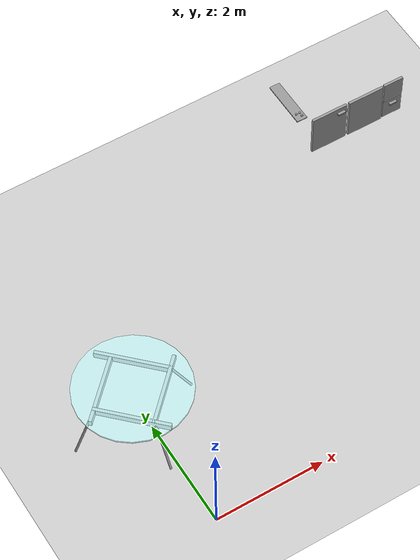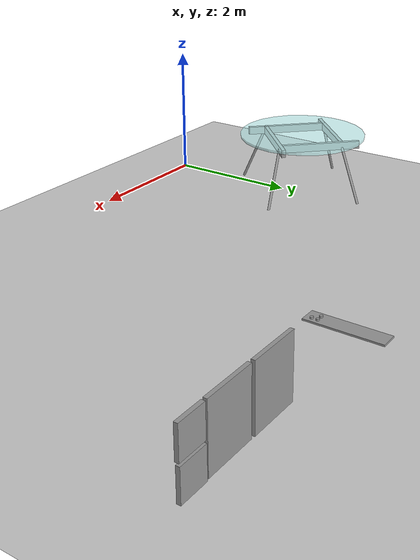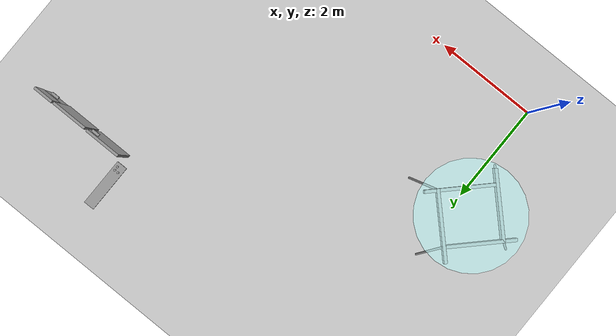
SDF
<sdf version="1.7">
 <world name="default">
  <model name="ground_plane">
   <static>1</static>
   <link name="link">
    <collision name="collision">
     <geometry><plane><normal>0 0 1</normal><size>100 100</size></plane></geometry>
     <surface>
      <contact><collide_bitmask>65535</collide_bitmask></contact>
      <friction><ode><mu>100</mu><mu2>50</mu2></ode></friction>
     </surface>
    </collision>
    <visual name="visual">
     <cast_shadows>0</cast_shadows>
     <geometry><plane><normal>0 0 1</normal><size>100 100</size></plane></geometry>
     <material>
      <script><uri>file://media/materials/scripts/gazebo.material</uri><name>Gazebo/Grey</name></script>
     </material>
    </visual>
   </link>
  </model>
  <model name="my_kitchen">
   <link name="link_0_0_clone_clone_clone_clone">
    <inertial>
     <mass>1</mass>
     <inertia><ixx>0.145833</ixx><ixy>0</ixy><ixz>0</ixz><iyy>0.145833</iyy><iyz>0</iyz><izz>0.125</izz></inertia>
    </inertial>
    <pose>1.86316 -0.307981 1.03286 0 -0 0</pose>
    <visual name="visual">
     <geometry><cylinder><radius>0.02</radius><length>0.03</length></cylinder></geometry>
     <material>
      <lighting>1</lighting>
      <script><uri>file://media/materials/scripts/gazebo.material</uri><name>Gazebo/Grey</name></script>
      <shader type="pixel"><normal_map>__default__</normal_map></shader>
      <ambient>0.6 0.6 0.6 1</ambient>
      <diffuse>0.6 0.6 0.6 1</diffuse>
      <specular>0.01 0.01 0.01 1</specular>
      <emissive>0 0 0 1</emissive>
     </material>
    </visual>
    <collision name="collision">
     <geometry><cylinder><radius>0.02</radius><length>0.03</length></cylinder></geometry>
     <surface>
      <friction>
       <ode><mu>1</mu><mu2>1</mu2><fdir1>0 0 0</fdir1><slip1>0</slip1><slip2>0</slip2></ode>
       <torsional>
        <coefficient>1</coefficient>
        <patch_radius>0</patch_radius>
        <surface_radius>0</surface_radius>
        <use_patch_radius>1</use_patch_radius>
        <ode><slip>0</slip></ode>
       </torsional>
      </friction>
      <bounce><restitution_coefficient>0</restitution_coefficient><threshold>1e+06</threshold></bounce>
      <contact>
       <collide_without_contact>0</collide_without_contact>
       <collide_without_contact_bitmask>1</collide_without_contact_bitmask>
       <collide_bitmask>1</collide_bitmask>
       <ode>
        <soft_cfm>0</soft_cfm>
        <soft_erp>0.2</soft_erp>
        <kp>1e+13</kp>
        <kd>1</kd>
        <max_vel>0.01</max_vel>
        <min_depth>0</min_depth>
       </ode>
       <bullet>
        <split_impulse>1</split_impulse>
        <split_impulse_penetration_threshold>-0.01</split_impulse_penetration_threshold>
        <soft_cfm>0</soft_cfm>
        <soft_erp>0.2</soft_erp>
        <kp>1e+13</kp>
        <kd>1</kd>
       </bullet>
      </contact>
     </surface>
    </collision>
   </link>
   <link name="link_0_0_clone_clone_clone_clone_clone">
    <inertial>
     <mass>1</mass>
     <inertia><ixx>0.145833</ixx><ixy>0</ixy><ixz>0</ixz><iyy>0.145833</iyy><iyz>0</iyz><izz>0.125</izz></inertia>
    </inertial>
    <pose>1.93281 -0.308649 1.03286 0 -0 0</pose>
    <visual name="visual">
     <geometry><cylinder><radius>0.02</radius><length>0.03</length></cylinder></geometry>
     <material>
      <lighting>1</lighting>
      <script><uri>file://media/materials/scripts/gazebo.material</uri><name>Gazebo/Grey</name></script>
      <shader type="pixel"><normal_map>__default__</normal_map></shader>
      <ambient>0.6 0.6 0.6 1</ambient>
      <diffuse>0.6 0.6 0.6 1</diffuse>
      <specular>0.01 0.01 0.01 1</specular>
      <emissive>0 0 0 1</emissive>
     </material>
    </visual>
    <collision name="collision">
     <geometry><cylinder><radius>0.02</radius><length>0.03</length></cylinder></geometry>
     <surface>
      <friction>
       <ode><mu>1</mu><mu2>1</mu2><fdir1>0 0 0</fdir1><slip1>0</slip1><slip2>0</slip2></ode>
       <torsional>
        <coefficient>1</coefficient>
        <patch_radius>0</patch_radius>
        <surface_radius>0</surface_radius>
        <use_patch_radius>1</use_patch_radius>
        <ode><slip>0</slip></ode>
       </torsional>
      </friction>
      <bounce><restitution_coefficient>0</restitution_coefficient><threshold>1e+06</threshold></bounce>
      <contact>
       <collide_without_contact>0</collide_without_contact>
       <collide_without_contact_bitmask>1</collide_without_contact_bitmask>
       <collide_bitmask>1</collide_bitmask>
       <ode>
        <soft_cfm>0</soft_cfm>
        <soft_erp>0.2</soft_erp>
        <kp>1e+13</kp>
        <kd>1</kd>
        <max_vel>0.01</max_vel>
        <min_depth>0</min_depth>
       </ode>
       <bullet>
        <split_impulse>1</split_impulse>
        <split_impulse_penetration_threshold>-0.01</split_impulse_penetration_threshold>
        <soft_cfm>0</soft_cfm>
        <soft_erp>0.2</soft_erp>
        <kp>1e+13</kp>
        <kd>1</kd>
       </bullet>
      </contact>
     </surface>
    </collision>
   </link>
   <link name="link_0_0_clone_clone_clone_clone_clone_clone_clone">
    <inertial>
     <mass>1</mass>
     <inertia><ixx>0.145833</ixx><ixy>0</ixy><ixz>0</ixz><iyy>0.145833</iyy><iyz>0</iyz><izz>0.125</izz></inertia>
    </inertial>
    <pose>1.93241 -0.377735 1.03286 0 -0 0</pose>
    <visual name="visual">
     <geometry><cylinder><radius>0.02</radius><length>0.03</length></cylinder></geometry>
     <material>
      <lighting>1</lighting>
      <script><uri>file://media/materials/scripts/gazebo.material</uri><name>Gazebo/Grey</name></script>
      <shader type="pixel"><normal_map>__default__</normal_map></shader>
      <ambient>0.6 0.6 0.6 1</ambient>
      <diffuse>0.6 0.6 0.6 1</diffuse>
      <specular>0.01 0.01 0.01 1</specular>
      <emissive>0 0 0 1</emissive>
     </material>
    </visual>
    <collision name="collision">
     <geometry><cylinder><radius>0.02</radius><length>0.03</length></cylinder></geometry>
     <surface>
      <friction>
       <ode><mu>1</mu><mu2>1</mu2><fdir1>0 0 0</fdir1><slip1>0</slip1><slip2>0</slip2></ode>
       <torsional>
        <coefficient>1</coefficient>
        <patch_radius>0</patch_radius>
        <surface_radius>0</surface_radius>
        <use_patch_radius>1</use_patch_radius>
        <ode><slip>0</slip></ode>
       </torsional>
      </friction>
      <bounce><restitution_coefficient>0</restitution_coefficient><threshold>1e+06</threshold></bounce>
      <contact>
       <collide_without_contact>0</collide_without_contact>
       <collide_without_contact_bitmask>1</collide_without_contact_bitmask>
       <collide_bitmask>1</collide_bitmask>
       <ode>
        <soft_cfm>0</soft_cfm>
        <soft_erp>0.2</soft_erp>
        <kp>1e+13</kp>
        <kd>1</kd>
        <max_vel>0.01</max_vel>
        <min_depth>0</min_depth>
       </ode>
       <bullet>
        <split_impulse>1</split_impulse>
        <split_impulse_penetration_threshold>-0.01</split_impulse_penetration_threshold>
        <soft_cfm>0</soft_cfm>
        <soft_erp>0.2</soft_erp>
        <kp>1e+13</kp>
        <kd>1</kd>
       </bullet>
      </contact>
     </surface>
    </collision>
   </link>
   <link name="link_clone_0_clone">
    <inertial>
     <mass>1</mass>
     <inertia>
      <ixx>0.166667</ixx>
      <ixy>0</ixy>
      <ixz>0</ixz>
      <iyy>0.166667</iyy>
      <iyz>0</iyz>
      <izz>0.166667</izz>
     </inertia>
    </inertial>
    <pose>1.89193 -0.003715 0.520133 0 -0 0</pose>
    <gravity>0</gravity>
    <visual name="visual">
     <geometry><box><size>0.2 0.9 0.02</size></box></geometry>
     <material>
      <script><name>Gazebo/Grey</name><uri>file://media/materials/scripts/gazebo.material</uri></script>
      <shader type="pixel"><normal_map>__default__</normal_map></shader>
      <ambient>0.4 0.4 0.4 1</ambient>
      <diffuse>0.4 0.4 0.4 1</diffuse>
      <specular>0.01 0.01 0.01 1</specular>
      <emissive>0 0 0 1</emissive>
     </material>
     <pose>0 0 0.5 0 -0 0</pose>
    </visual>
    <collision name="collision">
     <pose>0 0 0.5 0 -0 0</pose>
     <geometry><box><size>0.2 0.9 0.02</size></box></geometry>
     <surface>
      <friction>
       <ode><mu>1</mu><mu2>1</mu2><fdir1>0 0 0</fdir1><slip1>0</slip1><slip2>0</slip2></ode>
       <torsional>
        <coefficient>1</coefficient>
        <patch_radius>0</patch_radius>
        <surface_radius>0</surface_radius>
        <use_patch_radius>1</use_patch_radius>
        <ode><slip>0</slip></ode>
       </torsional>
      </friction>
      <bounce><restitution_coefficient>0</restitution_coefficient><threshold>1e+06</threshold></bounce>
      <contact>
       <collide_without_contact>0</collide_without_contact>
       <collide_without_contact_bitmask>1</collide_without_contact_bitmask>
       <collide_bitmask>1</collide_bitmask>
       <ode>
        <soft_cfm>0</soft_cfm>
        <soft_erp>0.2</soft_erp>
        <kp>1e+13</kp>
        <kd>1</kd>
        <max_vel>0.01</max_vel>
        <min_depth>0</min_depth>
       </ode>
       <bullet>
        <split_impulse>1</split_impulse>
        <split_impulse_penetration_threshold>-0.01</split_impulse_penetration_threshold>
        <soft_cfm>0</soft_cfm>
        <soft_erp>0.2</soft_erp>
        <kp>1e+13</kp>
        <kd>1</kd>
       </bullet>
      </contact>
     </surface>
    </collision>
   </link>
   <link name="link_clone_clone_clone_0_clone_clone_clone_0_clone_clone">
    <inertial>
     <mass>1</mass>
     <inertia>
      <ixx>0.166667</ixx>
      <ixy>0</ixy>
      <ixz>0</ixz>
      <iyy>0.166667</iyy>
      <iyz>0</iyz>
      <izz>0.166667</izz>
     </inertia>
    </inertial>
    <pose>3.17153 -0.519787 0.016041 0 -0 0</pose>
    <gravity>0</gravity>
    <visual name="visual">
     <geometry><box><size>0.05 0.7 0.85</size></box></geometry>
     <material>
      <script><name>Gazebo/Grey</name><uri>file://media/materials/scripts/gazebo.material</uri></script>
      <shader type="pixel"><normal_map>__default__</normal_map></shader>
      <ambient>0.4 0.4 0.4 1</ambient>
      <diffuse>0.4 0.4 0.4 1</diffuse>
      <specular>0.01 0.01 0.01 1</specular>
      <emissive>0 0 0 1</emissive>
     </material>
     <pose>0 0 0.5 0 -0 1.5707</pose>
    </visual>
    <collision name="collision">
     <pose>0 0 0.5 0 -0 1.5707</pose>
     <geometry><box><size>0.05 0.7 0.85</size></box></geometry>
     <surface>
      <friction>
       <ode><mu>1</mu><mu2>1</mu2><fdir1>0 0 0</fdir1><slip1>0</slip1><slip2>0</slip2></ode>
       <torsional>
        <coefficient>1</coefficient>
        <patch_radius>0</patch_radius>
        <surface_radius>0</surface_radius>
        <use_patch_radius>1</use_patch_radius>
        <ode><slip>0</slip></ode>
       </torsional>
      </friction>
      <bounce><restitution_coefficient>0</restitution_coefficient><threshold>1e+06</threshold></bounce>
      <contact>
       <collide_without_contact>0</collide_without_contact>
       <collide_without_contact_bitmask>1</collide_without_contact_bitmask>
       <collide_bitmask>1</collide_bitmask>
       <ode>
        <soft_cfm>0</soft_cfm>
        <soft_erp>0.2</soft_erp>
        <kp>1e+13</kp>
        <kd>1</kd>
        <max_vel>0.01</max_vel>
        <min_depth>0</min_depth>
       </ode>
       <bullet>
        <split_impulse>1</split_impulse>
        <split_impulse_penetration_threshold>-0.01</split_impulse_penetration_threshold>
        <soft_cfm>0</soft_cfm>
        <soft_erp>0.2</soft_erp>
        <kp>1e+13</kp>
        <kd>1</kd>
       </bullet>
      </contact>
     </surface>
    </collision>
   </link>
   <link name="link_clone_clone_clone_0_clone_clone_clone_0_clone_clone_clone">
    <inertial>
     <mass>1</mass>
     <inertia>
      <ixx>0.166667</ixx>
      <ixy>0</ixy>
      <ixz>0</ixz>
      <iyy>0.166667</iyy>
      <iyz>0</iyz>
      <izz>0.166667</izz>
     </inertia>
    </inertial>
    <pose>2.42242 -0.51406 0.016041 0 -0 0</pose>
    <gravity>0</gravity>
    <visual name="visual">
     <geometry><box><size>0.05 0.7 0.85</size></box></geometry>
     <material>
      <script><name>Gazebo/Grey</name><uri>file://media/materials/scripts/gazebo.material</uri></script>
      <shader type="pixel"><normal_map>__default__</normal_map></shader>
      <ambient>0.4 0.4 0.4 1</ambient>
      <diffuse>0.4 0.4 0.4 1</diffuse>
      <specular>0.01 0.01 0.01 1</specular>
      <emissive>0 0 0 1</emissive>
     </material>
     <pose>0 0 0.5 0 -0 1.5707</pose>
    </visual>
    <collision name="collision">
     <pose>0 0 0.5 0 -0 1.5707</pose>
     <geometry><box><size>0.05 0.7 0.85</size></box></geometry>
     <surface>
      <friction>
       <ode><mu>1</mu><mu2>1</mu2><fdir1>0 0 0</fdir1><slip1>0</slip1><slip2>0</slip2></ode>
       <torsional>
        <coefficient>1</coefficient>
        <patch_radius>0</patch_radius>
        <surface_radius>0</surface_radius>
        <use_patch_radius>1</use_patch_radius>
        <ode><slip>0</slip></ode>
       </torsional>
      </friction>
      <bounce><restitution_coefficient>0</restitution_coefficient><threshold>1e+06</threshold></bounce>
      <contact>
       <collide_without_contact>0</collide_without_contact>
       <collide_without_contact_bitmask>1</collide_without_contact_bitmask>
       <collide_bitmask>1</collide_bitmask>
       <ode>
        <soft_cfm>0</soft_cfm>
        <soft_erp>0.2</soft_erp>
        <kp>1e+13</kp>
        <kd>1</kd>
        <max_vel>0.01</max_vel>
        <min_depth>0</min_depth>
       </ode>
       <bullet>
        <split_impulse>1</split_impulse>
        <split_impulse_penetration_threshold>-0.01</split_impulse_penetration_threshold>
        <soft_cfm>0</soft_cfm>
        <soft_erp>0.2</soft_erp>
        <kp>1e+13</kp>
        <kd>1</kd>
       </bullet>
      </contact>
     </surface>
    </collision>
   </link>
   <link name="link_clone_clone_clone_0_clone_clone_clone_0_clone_clone_clone_0">
    <inertial>
     <mass>1</mass>
     <inertia>
      <ixx>0.166667</ixx>
      <ixy>0</ixy>
      <ixz>0</ixz>
      <iyy>0.166667</iyy>
      <iyz>0</iyz>
      <izz>0.166667</izz>
     </inertia>
    </inertial>
    <pose>3.74896 -0.513318 0.237061 0 -0 0</pose>
    <gravity>0</gravity>
    <visual name="visual">
     <geometry><box><size>0.05 0.39 0.41</size></box></geometry>
     <material>
      <script><name>Gazebo/Grey</name><uri>file://media/materials/scripts/gazebo.material</uri></script>
      <shader type="pixel"><normal_map>__default__</normal_map></shader>
      <ambient>0.4 0.4 0.4 1</ambient>
      <diffuse>0.4 0.4 0.4 1</diffuse>
      <specular>0.01 0.01 0.01 1</specular>
      <emissive>0 0 0 1</emissive>
     </material>
     <pose>0 0 0.5 0 -0 1.5707</pose>
    </visual>
    <collision name="collision">
     <pose>0 0 0.5 0 -0 1.5707</pose>
     <geometry><box><size>0.05 0.39 0.41</size></box></geometry>
     <surface>
      <friction>
       <ode><mu>1</mu><mu2>1</mu2><fdir1>0 0 0</fdir1><slip1>0</slip1><slip2>0</slip2></ode>
       <torsional>
        <coefficient>1</coefficient>
        <patch_radius>0</patch_radius>
        <surface_radius>0</surface_radius>
        <use_patch_radius>1</use_patch_radius>
        <ode><slip>0</slip></ode>
       </torsional>
      </friction>
      <bounce><restitution_coefficient>0</restitution_coefficient><threshold>1e+06</threshold></bounce>
      <contact>
       <collide_without_contact>0</collide_without_contact>
       <collide_without_contact_bitmask>1</collide_without_contact_bitmask>
       <collide_bitmask>1</collide_bitmask>
       <ode>
        <soft_cfm>0</soft_cfm>
        <soft_erp>0.2</soft_erp>
        <kp>1e+13</kp>
        <kd>1</kd>
        <max_vel>0.01</max_vel>
        <min_depth>0</min_depth>
       </ode>
       <bullet>
        <split_impulse>1</split_impulse>
        <split_impulse_penetration_threshold>-0.01</split_impulse_penetration_threshold>
        <soft_cfm>0</soft_cfm>
        <soft_erp>0.2</soft_erp>
        <kp>1e+13</kp>
        <kd>1</kd>
       </bullet>
      </contact>
     </surface>
    </collision>
   </link>
   <link name="link_clone_clone_clone_0_clone_clone_clone_0_clone_clone_clone_0_clone">
    <inertial>
     <mass>1</mass>
     <inertia>
      <ixx>0.166667</ixx>
      <ixy>0</ixy>
      <ixz>0</ixz>
      <iyy>0.166667</iyy>
      <iyz>0</iyz>
      <izz>0.166667</izz>
     </inertia>
    </inertial>
    <pose>3.74748 -0.506678 -0.203025 0 -0 0</pose>
    <visual name="visual">
     <geometry><box><size>0.05 0.39 0.41</size></box></geometry>
     <material>
      <script><name>Gazebo/Grey</name><uri>file://media/materials/scripts/gazebo.material</uri></script>
      <shader type="pixel"><normal_map>__default__</normal_map></shader>
      <ambient>0.4 0.4 0.4 1</ambient>
      <diffuse>0.4 0.4 0.4 1</diffuse>
      <specular>0.01 0.01 0.01 1</specular>
      <emissive>0 0 0 1</emissive>
     </material>
     <pose>0 0 0.5 0 -0 1.5707</pose>
    </visual>
    <collision name="collision">
     <pose>0 0 0.5 0 -0 1.5707</pose>
     <geometry><box><size>0.05 0.39 0.41</size></box></geometry>
     <surface>
      <friction>
       <ode><mu>1</mu><mu2>1</mu2><fdir1>0 0 0</fdir1><slip1>0</slip1><slip2>0</slip2></ode>
       <torsional>
        <coefficient>1</coefficient>
        <patch_radius>0</patch_radius>
        <surface_radius>0</surface_radius>
        <use_patch_radius>1</use_patch_radius>
        <ode><slip>0</slip></ode>
       </torsional>
      </friction>
      <bounce><restitution_coefficient>0</restitution_coefficient><threshold>1e+06</threshold></bounce>
      <contact>
       <collide_without_contact>0</collide_without_contact>
       <collide_without_contact_bitmask>1</collide_without_contact_bitmask>
       <collide_bitmask>1</collide_bitmask>
       <ode>
        <soft_cfm>0</soft_cfm>
        <soft_erp>0.2</soft_erp>
        <kp>1e+13</kp>
        <kd>1</kd>
        <max_vel>0.01</max_vel>
        <min_depth>0</min_depth>
       </ode>
       <bullet>
        <split_impulse>1</split_impulse>
        <split_impulse_penetration_threshold>-0.01</split_impulse_penetration_threshold>
        <soft_cfm>0</soft_cfm>
        <soft_erp>0.2</soft_erp>
        <kp>1e+13</kp>
        <kd>1</kd>
       </bullet>
      </contact>
     </surface>
    </collision>
   </link>
   <link name="link_clone_clone_clone_0_clone_clone_clone_clone_1">
    <inertial>
     <mass>1</mass>
     <inertia>
      <ixx>0.166667</ixx>
      <ixy>0</ixy>
      <ixz>0</ixz>
      <iyy>0.166667</iyy>
      <iyz>0</iyz>
      <izz>0.166667</izz>
     </inertia>
    </inertial>
    <pose>2.64241 -0.56602 0.338029 0 -0 0</pose>
    <gravity>0</gravity>
    <visual name="visual">
     <geometry><box><size>0.05 0.15 0.03</size></box></geometry>
     <material>
      <script><name>Gazebo/Grey</name><uri>file://media/materials/scripts/gazebo.material</uri></script>
      <shader type="pixel"><normal_map>__default__</normal_map></shader>
      <ambient>0.9 0.9 0.9 1</ambient>
      <diffuse>0.8 0.8 0.8 1</diffuse>
      <specular>0.01 0.01 0.01 1</specular>
      <emissive>0 0 0 1</emissive>
     </material>
     <pose>0 0 0.5 0 -0 1.5707</pose>
    </visual>
    <collision name="collision">
     <pose>0 0 0.5 0 -0 1.5707</pose>
     <geometry><box><size>0.05 0.15 0.03</size></box></geometry>
     <surface>
      <friction>
       <ode><mu>1</mu><mu2>1</mu2><fdir1>0 0 0</fdir1><slip1>0</slip1><slip2>0</slip2></ode>
       <torsional>
        <coefficient>1</coefficient>
        <patch_radius>0</patch_radius>
        <surface_radius>0</surface_radius>
        <use_patch_radius>1</use_patch_radius>
        <ode><slip>0</slip></ode>
       </torsional>
      </friction>
      <bounce><restitution_coefficient>0</restitution_coefficient><threshold>1e+06</threshold></bounce>
      <contact>
       <collide_without_contact>0</collide_without_contact>
       <collide_without_contact_bitmask>1</collide_without_contact_bitmask>
       <collide_bitmask>1</collide_bitmask>
       <ode>
        <soft_cfm>0</soft_cfm>
        <soft_erp>0.2</soft_erp>
        <kp>1e+13</kp>
        <kd>1</kd>
        <max_vel>0.01</max_vel>
        <min_depth>0</min_depth>
       </ode>
       <bullet>
        <split_impulse>1</split_impulse>
        <split_impulse_penetration_threshold>-0.01</split_impulse_penetration_threshold>
        <soft_cfm>0</soft_cfm>
        <soft_erp>0.2</soft_erp>
        <kp>1e+13</kp>
        <kd>1</kd>
       </bullet>
      </contact>
     </surface>
    </collision>
   </link>
   <link name="link_clone_clone_clone_0_clone_clone_clone_clone_1_clone">
    <inertial>
     <mass>1</mass>
     <inertia>
      <ixx>0.166667</ixx>
      <ixy>0</ixy>
      <ixz>0</ixz>
      <iyy>0.166667</iyy>
      <iyz>0</iyz>
      <izz>0.166667</izz>
     </inertia>
    </inertial>
    <pose>3.74642 -0.563139 -0.08913 0 -0 0</pose>
    <gravity>0</gravity>
    <visual name="visual">
     <geometry><box><size>0.05 0.15 0.03</size></box></geometry>
     <material>
      <script><name>Gazebo/Grey</name><uri>file://media/materials/scripts/gazebo.material</uri></script>
      <shader type="pixel"><normal_map>__default__</normal_map></shader>
      <ambient>0.9 0.9 0.9 1</ambient>
      <diffuse>0.8 0.8 0.8 1</diffuse>
      <specular>0.01 0.01 0.01 1</specular>
      <emissive>0 0 0 1</emissive>
     </material>
     <pose>0 0 0.5 0 -0 1.5707</pose>
    </visual>
    <collision name="collision">
     <pose>0 0 0.5 0 -0 1.5707</pose>
     <geometry><box><size>0.05 0.15 0.03</size></box></geometry>
     <surface>
      <friction>
       <ode><mu>1</mu><mu2>1</mu2><fdir1>0 0 0</fdir1><slip1>0</slip1><slip2>0</slip2></ode>
       <torsional>
        <coefficient>1</coefficient>
        <patch_radius>0</patch_radius>
        <surface_radius>0</surface_radius>
        <use_patch_radius>1</use_patch_radius>
        <ode><slip>0</slip></ode>
       </torsional>
      </friction>
      <bounce><restitution_coefficient>0</restitution_coefficient><threshold>1e+06</threshold></bounce>
      <contact>
       <collide_without_contact>0</collide_without_contact>
       <collide_without_contact_bitmask>1</collide_without_contact_bitmask>
       <collide_bitmask>1</collide_bitmask>
       <ode>
        <soft_cfm>0</soft_cfm>
        <soft_erp>0.2</soft_erp>
        <kp>1e+13</kp>
        <kd>1</kd>
        <max_vel>0.01</max_vel>
        <min_depth>0</min_depth>
       </ode>
       <bullet>
        <split_impulse>1</split_impulse>
        <split_impulse_penetration_threshold>-0.01</split_impulse_penetration_threshold>
        <soft_cfm>0</soft_cfm>
        <soft_erp>0.2</soft_erp>
        <kp>1e+13</kp>
        <kd>1</kd>
       </bullet>
      </contact>
     </surface>
    </collision>
   </link>
   <static>1</static>
   <pose>3.14913 5.84953 0 0 -0 0</pose>
  </model>
  <model name="my_round_table">
   <link name="link_0">
    <inertial>
     <mass>1</mass>
     <inertia><ixx>0.145833</ixx><ixy>0</ixy><ixz>0</ixz><iyy>0.145833</iyy><iyz>0</iyz><izz>0.125</izz></inertia>
    </inertial>
    <pose>-0.33877 -8.15163 0.5 0 -0 0</pose>
    <visual name="visual">
     <pose>0 0 0.45 0 -0 0</pose>
     <geometry><cylinder><radius>1</radius><length>0.04</length></cylinder></geometry>
     <material>
      <lighting>1</lighting>
      <script><uri>file://media/materials/scripts/gazebo.material</uri><name>Gazebo/Grey</name></script>
      <shader type="pixel"><normal_map>__default__</normal_map></shader>
      <ambient>0.79 1 1 0.4</ambient>
      <diffuse>0.79 1 1 1</diffuse>
      <specular>0.01 0.01 0.01 1</specular>
      <emissive>0 0 0 1</emissive>
     </material>
     <transparency>0.3</transparency>
    </visual>
    <collision name="collision">
     <pose>0 0 0.45 0 -0 0</pose>
     <geometry><cylinder><radius>1</radius><length>0.04</length></cylinder></geometry>
     <surface>
      <friction>
       <ode><mu>1</mu><mu2>1</mu2><fdir1>0 0 0</fdir1><slip1>0</slip1><slip2>0</slip2></ode>
       <torsional>
        <coefficient>1</coefficient>
        <patch_radius>0</patch_radius>
        <surface_radius>0</surface_radius>
        <use_patch_radius>1</use_patch_radius>
        <ode><slip>0</slip></ode>
       </torsional>
      </friction>
      <bounce><restitution_coefficient>0</restitution_coefficient><threshold>1e+06</threshold></bounce>
      <contact>
       <collide_without_contact>0</collide_without_contact>
       <collide_without_contact_bitmask>1</collide_without_contact_bitmask>
       <collide_bitmask>1</collide_bitmask>
       <ode>
        <soft_cfm>0</soft_cfm>
        <soft_erp>0.2</soft_erp>
        <kp>1e+13</kp>
        <kd>1</kd>
        <max_vel>0.01</max_vel>
        <min_depth>0</min_depth>
       </ode>
       <bullet>
        <split_impulse>1</split_impulse>
        <split_impulse_penetration_threshold>-0.01</split_impulse_penetration_threshold>
        <soft_cfm>0</soft_cfm>
        <soft_erp>0.2</soft_erp>
        <kp>1e+13</kp>
        <kd>1</kd>
       </bullet>
      </contact>
     </surface>
    </collision>
   </link>
   <link name="link_0_0">
    <inertial>
     <mass>1</mass>
     <inertia>
      <ixx>0.166667</ixx>
      <ixy>0</ixy>
      <ixz>0</ixz>
      <iyy>0.166667</iyy>
      <iyz>0</iyz>
      <izz>0.166667</izz>
     </inertia>
    </inertial>
    <pose>-0.834607 -8.25556 0.5 0 -0 0</pose>
    <visual name="visual">
     <pose>0 0 0.4 0 -0 0</pose>
     <geometry><box><size>0.06 1.3 0.12</size></box></geometry>
     <material>
      <lighting>1</lighting>
      <script><uri>file://media/materials/scripts/gazebo.material</uri><name>Gazebo/Grey</name></script>
      <shader type="pixel"><normal_map>__default__</normal_map></shader>
      <ambient>0.6 0.6 0.6 1</ambient>
      <diffuse>0.7 0.7 0.7 1</diffuse>
      <specular>0.01 0.01 0.01 1</specular>
      <emissive>0 0 0 1</emissive>
     </material>
    </visual>
    <collision name="collision">
     <pose>0 0 0.4 0 -0 0</pose>
     <geometry><box><size>0.06 1.3 0.12</size></box></geometry>
     <surface>
      <friction>
       <ode><mu>1</mu><mu2>1</mu2><fdir1>0 0 0</fdir1><slip1>0</slip1><slip2>0</slip2></ode>
       <torsional>
        <coefficient>1</coefficient>
        <patch_radius>0</patch_radius>
        <surface_radius>0</surface_radius>
        <use_patch_radius>1</use_patch_radius>
        <ode><slip>0</slip></ode>
       </torsional>
      </friction>
      <bounce><restitution_coefficient>0</restitution_coefficient><threshold>1e+06</threshold></bounce>
      <contact>
       <collide_without_contact>0</collide_without_contact>
       <collide_without_contact_bitmask>1</collide_without_contact_bitmask>
       <collide_bitmask>1</collide_bitmask>
       <ode>
        <soft_cfm>0</soft_cfm>
        <soft_erp>0.2</soft_erp>
        <kp>1e+13</kp>
        <kd>1</kd>
        <max_vel>0.01</max_vel>
        <min_depth>0</min_depth>
       </ode>
       <bullet>
        <split_impulse>1</split_impulse>
        <split_impulse_penetration_threshold>-0.01</split_impulse_penetration_threshold>
        <soft_cfm>0</soft_cfm>
        <soft_erp>0.2</soft_erp>
        <kp>1e+13</kp>
        <kd>1</kd>
       </bullet>
      </contact>
     </surface>
    </collision>
   </link>
   <link name="link_0_0_clone">
    <inertial>
     <mass>1</mass>
     <inertia>
      <ixx>0.166667</ixx>
      <ixy>0</ixy>
      <ixz>0</ixz>
      <iyy>0.166667</iyy>
      <iyz>0</iyz>
      <izz>0.166667</izz>
     </inertia>
    </inertial>
    <pose>-0.470736 -7.63546 0.5 0 -0 0</pose>
    <visual name="visual_0">
     <pose>0 0 0.4 0 -0 1.5707</pose>
     <geometry><box><size>0.06 1.3 0.12</size></box></geometry>
     <material>
      <lighting>1</lighting>
      <script><uri>file://media/materials/scripts/gazebo.material</uri><name>Gazebo/Grey</name></script>
      <shader type="pixel"><normal_map>__default__</normal_map></shader>
      <ambient>0.6 0.6 0.6 1</ambient>
      <diffuse>0.7 0.7 0.7 1</diffuse>
      <specular>0.01 0.01 0.01 1</specular>
      <emissive>0 0 0 1</emissive>
     </material>
    </visual>
    <collision name="collision">
     <pose>0 0 0.4 0 -0 1.5707</pose>
     <geometry><box><size>0.06 1.3 0.12</size></box></geometry>
     <surface>
      <friction>
       <ode><mu>1</mu><mu2>1</mu2><fdir1>0 0 0</fdir1><slip1>0</slip1><slip2>0</slip2></ode>
       <torsional>
        <coefficient>1</coefficient>
        <patch_radius>0</patch_radius>
        <surface_radius>0</surface_radius>
        <use_patch_radius>1</use_patch_radius>
        <ode><slip>0</slip></ode>
       </torsional>
      </friction>
      <bounce><restitution_coefficient>0</restitution_coefficient><threshold>1e+06</threshold></bounce>
      <contact>
       <collide_without_contact>0</collide_without_contact>
       <collide_without_contact_bitmask>1</collide_without_contact_bitmask>
       <collide_bitmask>1</collide_bitmask>
       <ode>
        <soft_cfm>0</soft_cfm>
        <soft_erp>0.2</soft_erp>
        <kp>1e+13</kp>
        <kd>1</kd>
        <max_vel>0.01</max_vel>
        <min_depth>0</min_depth>
       </ode>
       <bullet>
        <split_impulse>1</split_impulse>
        <split_impulse_penetration_threshold>-0.01</split_impulse_penetration_threshold>
        <soft_cfm>0</soft_cfm>
        <soft_erp>0.2</soft_erp>
        <kp>1e+13</kp>
        <kd>1</kd>
       </bullet>
      </contact>
     </surface>
    </collision>
   </link>
   <link name="link_0_0_clone_0">
    <inertial>
     <mass>1</mass>
     <inertia>
      <ixx>0.166667</ixx>
      <ixy>0</ixy>
      <ixz>0</ixz>
      <iyy>0.166667</iyy>
      <iyz>0</iyz>
      <izz>0.166667</izz>
     </inertia>
    </inertial>
    <pose>0.150666 -8.04578 0.5 0 -0 0</pose>
    <visual name="visual_0">
     <pose>0 0 0.4 0 -0 0</pose>
     <geometry><box><size>0.06 1.3 0.12</size></box></geometry>
     <material>
      <lighting>1</lighting>
      <script><uri>file://media/materials/scripts/gazebo.material</uri><name>Gazebo/Grey</name></script>
      <shader type="pixel"><normal_map>__default__</normal_map></shader>
      <ambient>0.6 0.6 0.6 1</ambient>
      <diffuse>0.7 0.7 0.7 1</diffuse>
      <specular>0.01 0.01 0.01 1</specular>
      <emissive>0 0 0 1</emissive>
     </material>
    </visual>
    <collision name="collision">
     <pose>0 0 0.4 0 -0 0</pose>
     <geometry><box><size>0.06 1.3 0.12</size></box></geometry>
     <surface>
      <friction>
       <ode><mu>1</mu><mu2>1</mu2><fdir1>0 0 0</fdir1><slip1>0</slip1><slip2>0</slip2></ode>
       <torsional>
        <coefficient>1</coefficient>
        <patch_radius>0</patch_radius>
        <surface_radius>0</surface_radius>
        <use_patch_radius>1</use_patch_radius>
        <ode><slip>0</slip></ode>
       </torsional>
      </friction>
      <bounce><restitution_coefficient>0</restitution_coefficient><threshold>1e+06</threshold></bounce>
      <contact>
       <collide_without_contact>0</collide_without_contact>
       <collide_without_contact_bitmask>1</collide_without_contact_bitmask>
       <collide_bitmask>1</collide_bitmask>
       <ode>
        <soft_cfm>0</soft_cfm>
        <soft_erp>0.2</soft_erp>
        <kp>1e+13</kp>
        <kd>1</kd>
        <max_vel>0.01</max_vel>
        <min_depth>0</min_depth>
       </ode>
       <bullet>
        <split_impulse>1</split_impulse>
        <split_impulse_penetration_threshold>-0.01</split_impulse_penetration_threshold>
        <soft_cfm>0</soft_cfm>
        <soft_erp>0.2</soft_erp>
        <kp>1e+13</kp>
        <kd>1</kd>
       </bullet>
      </contact>
     </surface>
    </collision>
   </link>
   <link name="link_0_0_clone_clone">
    <inertial>
     <mass>1</mass>
     <inertia>
      <ixx>0.166667</ixx>
      <ixy>0</ixy>
      <ixz>0</ixz>
      <iyy>0.166667</iyy>
      <iyz>0</iyz>
      <izz>0.166667</izz>
     </inertia>
    </inertial>
    <pose>-0.215262 -8.66786 0.5 0 -0 0</pose>
    <visual name="visual_0">
     <pose>0 0 0.4 0 -0 1.5707</pose>
     <geometry><box><size>0.06 1.3 0.12</size></box></geometry>
     <material>
      <lighting>1</lighting>
      <script><uri>file://media/materials/scripts/gazebo.material</uri><name>Gazebo/Grey</name></script>
      <shader type="pixel"><normal_map>__default__</normal_map></shader>
      <ambient>0.6 0.6 0.6 1</ambient>
      <diffuse>0.7 0.7 0.7 1</diffuse>
      <specular>0.01 0.01 0.01 1</specular>
      <emissive>0 0 0 1</emissive>
     </material>
    </visual>
    <collision name="collision">
     <pose>0 0 0.4 0 -0 1.5707</pose>
     <geometry><box><size>0.06 1.3 0.12</size></box></geometry>
     <surface>
      <friction>
       <ode><mu>1</mu><mu2>1</mu2><fdir1>0 0 0</fdir1><slip1>0</slip1><slip2>0</slip2></ode>
       <torsional>
        <coefficient>1</coefficient>
        <patch_radius>0</patch_radius>
        <surface_radius>0</surface_radius>
        <use_patch_radius>1</use_patch_radius>
        <ode><slip>0</slip></ode>
       </torsional>
      </friction>
      <bounce><restitution_coefficient>0</restitution_coefficient><threshold>1e+06</threshold></bounce>
      <contact>
       <collide_without_contact>0</collide_without_contact>
       <collide_without_contact_bitmask>1</collide_without_contact_bitmask>
       <collide_bitmask>1</collide_bitmask>
       <ode>
        <soft_cfm>0</soft_cfm>
        <soft_erp>0.2</soft_erp>
        <kp>1e+13</kp>
        <kd>1</kd>
        <max_vel>0.01</max_vel>
        <min_depth>0</min_depth>
       </ode>
       <bullet>
        <split_impulse>1</split_impulse>
        <split_impulse_penetration_threshold>-0.01</split_impulse_penetration_threshold>
        <soft_cfm>0</soft_cfm>
        <soft_erp>0.2</soft_erp>
        <kp>1e+13</kp>
        <kd>1</kd>
       </bullet>
      </contact>
     </surface>
    </collision>
   </link>
   <link name="link_1_clone_1_clone_clone">
    <inertial>
     <mass>1</mass>
     <inertia><ixx>0.145833</ixx><ixy>0</ixy><ixz>0</ixz><iyy>0.145833</iyy><iyz>0</iyz><izz>0.125</izz></inertia>
    </inertial>
    <pose>-0.929071 -7.47144 0.501681 0 0 -0.237389</pose>
    <visual name="visual">
     <pose>0 0 -0.02 0.3 0.3 0</pose>
     <geometry><cylinder><radius>0.02</radius><length>1</length></cylinder></geometry>
     <material>
      <lighting>1</lighting>
      <script><uri>file://media/materials/scripts/gazebo.material</uri><name>Gazebo/Grey</name></script>
      <shader type="pixel"><normal_map>__default__</normal_map></shader>
      <ambient>0.5 0.5 0.5 1</ambient>
      <diffuse>0.8 0.8 0.8 1</diffuse>
      <specular>0.01 0.01 0.01 1</specular>
      <emissive>0 0 0 1</emissive>
     </material>
    </visual>
    <collision name="collision">
     <pose>0 0 -0.02 0.3 0.3 0</pose>
     <geometry><cylinder><radius>0.02</radius><length>1</length></cylinder></geometry>
     <surface>
      <friction>
       <ode><mu>1</mu><mu2>1</mu2><fdir1>0 0 0</fdir1><slip1>0</slip1><slip2>0</slip2></ode>
       <torsional>
        <coefficient>1</coefficient>
        <patch_radius>0</patch_radius>
        <surface_radius>0</surface_radius>
        <use_patch_radius>1</use_patch_radius>
        <ode><slip>0</slip></ode>
       </torsional>
      </friction>
      <bounce><restitution_coefficient>0</restitution_coefficient><threshold>1e+06</threshold></bounce>
      <contact>
       <collide_without_contact>0</collide_without_contact>
       <collide_without_contact_bitmask>1</collide_without_contact_bitmask>
       <collide_bitmask>1</collide_bitmask>
       <ode>
        <soft_cfm>0</soft_cfm>
        <soft_erp>0.2</soft_erp>
        <kp>1e+13</kp>
        <kd>1</kd>
        <max_vel>0.01</max_vel>
        <min_depth>0</min_depth>
       </ode>
       <bullet>
        <split_impulse>1</split_impulse>
        <split_impulse_penetration_threshold>-0.01</split_impulse_penetration_threshold>
        <soft_cfm>0</soft_cfm>
        <soft_erp>0.2</soft_erp>
        <kp>1e+13</kp>
        <kd>1</kd>
       </bullet>
      </contact>
     </surface>
    </collision>
   </link>
   <link name="link_1_clone_1_clone_clone_clone">
    <inertial>
     <mass>1</mass>
     <inertia><ixx>0.145833</ixx><ixy>0</ixy><ixz>0</ixz><iyy>0.145833</iyy><iyz>0</iyz><izz>0.125</izz></inertia>
    </inertial>
    <pose>-0.965306 -8.81368 0.501681 0 -0 1.63052</pose>
    <visual name="visual">
     <pose>0 0 -0.02 0.3 0.3 0</pose>
     <geometry><cylinder><radius>0.02</radius><length>1</length></cylinder></geometry>
     <material>
      <lighting>1</lighting>
      <script><uri>file://media/materials/scripts/gazebo.material</uri><name>Gazebo/Grey</name></script>
      <shader type="pixel"><normal_map>__default__</normal_map></shader>
      <ambient>0.5 0.5 0.5 1</ambient>
      <diffuse>0.8 0.8 0.8 1</diffuse>
      <specular>0.01 0.01 0.01 1</specular>
      <emissive>0 0 0 1</emissive>
     </material>
    </visual>
    <collision name="collision">
     <pose>0 0 -0.02 0.3 0.3 0</pose>
     <geometry><cylinder><radius>0.02</radius><length>1</length></cylinder></geometry>
     <surface>
      <friction>
       <ode><mu>1</mu><mu2>1</mu2><fdir1>0 0 0</fdir1><slip1>0</slip1><slip2>0</slip2></ode>
       <torsional>
        <coefficient>1</coefficient>
        <patch_radius>0</patch_radius>
        <surface_radius>0</surface_radius>
        <use_patch_radius>1</use_patch_radius>
        <ode><slip>0</slip></ode>
       </torsional>
      </friction>
      <bounce><restitution_coefficient>0</restitution_coefficient><threshold>1e+06</threshold></bounce>
      <contact>
       <collide_without_contact>0</collide_without_contact>
       <collide_without_contact_bitmask>1</collide_without_contact_bitmask>
       <collide_bitmask>1</collide_bitmask>
       <ode>
        <soft_cfm>0</soft_cfm>
        <soft_erp>0.2</soft_erp>
        <kp>1e+13</kp>
        <kd>1</kd>
        <max_vel>0.01</max_vel>
        <min_depth>0</min_depth>
       </ode>
       <bullet>
        <split_impulse>1</split_impulse>
        <split_impulse_penetration_threshold>-0.01</split_impulse_penetration_threshold>
        <soft_cfm>0</soft_cfm>
        <soft_erp>0.2</soft_erp>
        <kp>1e+13</kp>
        <kd>1</kd>
       </bullet>
      </contact>
     </surface>
    </collision>
   </link>
   <link name="link_1_clone_1_clone_clone_clone_0">
    <inertial>
     <mass>1</mass>
     <inertia><ixx>0.145833</ixx><ixy>0</ixy><ixz>0</ixz><iyy>0.145833</iyy><iyz>0</iyz><izz>0.125</izz></inertia>
    </inertial>
    <pose>0.275919 -7.4779 0.501681 0 0 -1.39702</pose>
    <visual name="visual">
     <pose>0 0 -0.02 0.3 0.3 0</pose>
     <geometry><cylinder><radius>0.02</radius><length>1</length></cylinder></geometry>
     <material>
      <lighting>1</lighting>
      <script><uri>file://media/materials/scripts/gazebo.material</uri><name>Gazebo/Grey</name></script>
      <shader type="pixel"><normal_map>__default__</normal_map></shader>
      <ambient>0.5 0.5 0.5 1</ambient>
      <diffuse>0.8 0.8 0.8 1</diffuse>
      <specular>0.01 0.01 0.01 1</specular>
      <emissive>0 0 0 1</emissive>
     </material>
    </visual>
    <collision name="collision">
     <pose>0 0 0 0.3 0.3 0</pose>
     <geometry><cylinder><radius>0.02</radius><length>1</length></cylinder></geometry>
     <surface>
      <friction>
       <ode><mu>1</mu><mu2>1</mu2><fdir1>0 0 0</fdir1><slip1>0</slip1><slip2>0</slip2></ode>
       <torsional>
        <coefficient>1</coefficient>
        <patch_radius>0</patch_radius>
        <surface_radius>0</surface_radius>
        <use_patch_radius>1</use_patch_radius>
        <ode><slip>0</slip></ode>
       </torsional>
      </friction>
      <bounce><restitution_coefficient>0</restitution_coefficient><threshold>1e+06</threshold></bounce>
      <contact>
       <collide_without_contact>0</collide_without_contact>
       <collide_without_contact_bitmask>1</collide_without_contact_bitmask>
       <collide_bitmask>1</collide_bitmask>
       <ode>
        <soft_cfm>0</soft_cfm>
        <soft_erp>0.2</soft_erp>
        <kp>1e+13</kp>
        <kd>1</kd>
        <max_vel>0.01</max_vel>
        <min_depth>0</min_depth>
       </ode>
       <bullet>
        <split_impulse>1</split_impulse>
        <split_impulse_penetration_threshold>-0.01</split_impulse_penetration_threshold>
        <soft_cfm>0</soft_cfm>
        <soft_erp>0.2</soft_erp>
        <kp>1e+13</kp>
        <kd>1</kd>
       </bullet>
      </contact>
     </surface>
    </collision>
   </link>
   <link name="link_1_clone_1_clone_clone_clone_0_clone">
    <inertial>
     <mass>1</mass>
     <inertia><ixx>0.145833</ixx><ixy>0</ixy><ixz>0</ixz><iyy>0.145833</iyy><iyz>0</iyz><izz>0.125</izz></inertia>
    </inertial>
    <pose>0.309037 -8.79302 0.501681 0 0 -3.03586</pose>
    <visual name="visual">
     <pose>0 0 -0.02 0.3 0.3 0</pose>
     <geometry><cylinder><radius>0.02</radius><length>1</length></cylinder></geometry>
     <material>
      <lighting>1</lighting>
      <script><uri>file://media/materials/scripts/gazebo.material</uri><name>Gazebo/Grey</name></script>
      <shader type="pixel"><normal_map>__default__</normal_map></shader>
      <ambient>0.5 0.5 0.5 1</ambient>
      <diffuse>0.8 0.8 0.8 1</diffuse>
      <specular>0.01 0.01 0.01 1</specular>
      <emissive>0 0 0 1</emissive>
     </material>
    </visual>
    <collision name="collision">
     <pose>0 0 -0.02 0.3 0.3 0</pose>
     <geometry><cylinder><radius>0.02</radius><length>1</length></cylinder></geometry>
     <surface>
      <friction>
       <ode><mu>1</mu><mu2>1</mu2><fdir1>0 0 0</fdir1><slip1>0</slip1><slip2>0</slip2></ode>
       <torsional>
        <coefficient>1</coefficient>
        <patch_radius>0</patch_radius>
        <surface_radius>0</surface_radius>
        <use_patch_radius>1</use_patch_radius>
        <ode><slip>0</slip></ode>
       </torsional>
      </friction>
      <bounce><restitution_coefficient>0</restitution_coefficient><threshold>1e+06</threshold></bounce>
      <contact>
       <collide_without_contact>0</collide_without_contact>
       <collide_without_contact_bitmask>1</collide_without_contact_bitmask>
       <collide_bitmask>1</collide_bitmask>
       <ode>
        <soft_cfm>0</soft_cfm>
        <soft_erp>0.2</soft_erp>
        <kp>1e+13</kp>
        <kd>1</kd>
        <max_vel>0.01</max_vel>
        <min_depth>0</min_depth>
       </ode>
       <bullet>
        <split_impulse>1</split_impulse>
        <split_impulse_penetration_threshold>-0.01</split_impulse_penetration_threshold>
        <soft_cfm>0</soft_cfm>
        <soft_erp>0.2</soft_erp>
        <kp>1e+13</kp>
        <kd>1</kd>
       </bullet>
      </contact>
     </surface>
    </collision>
   </link>
   <static>1</static>
   <pose>5.84339 7.79853 0 0 0 -0.785298</pose>
  </model>
 </world>
</sdf>
